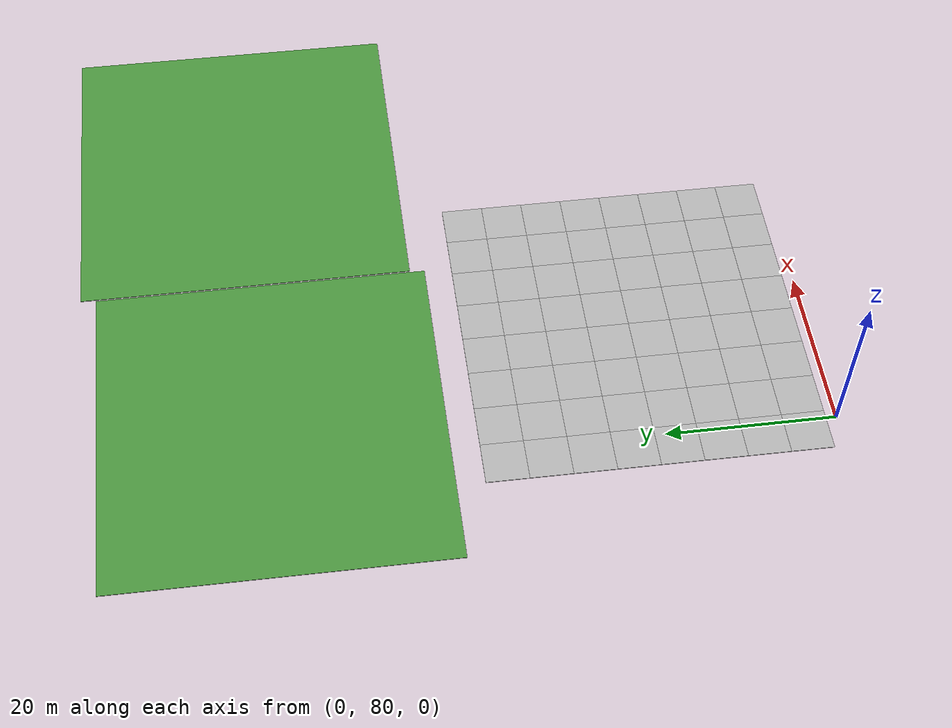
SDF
<sdf version="1.7">
 <world name="default">
  <model name="mud_plane_40x40_13">
   <model name="mud_plane_20x20">
    <model name="mud_plane">
     <static>1</static>
     <link name="link">
      <collision name="collision"><geometry><box><size>10 10 0.1</size></box></geometry></collision>
      <visual name="visual_1">
       <pose>-2.5 2.5 -0.05 0 -0 0</pose>
       <cast_shadows>0</cast_shadows>
       <geometry><box><size>5 5 0.1</size></box></geometry>
       <material>
        <script>
         <uri>model://mud_plane/materials/scripts</uri>
         <uri>model://mud_plane/materials/textures</uri>
         <name>vrc/mud</name>
        </script>
       </material>
      </visual>
      <visual name="visual_2">
       <pose>2.5 2.5 -0.05 0 -0 0</pose>
       <cast_shadows>0</cast_shadows>
       <geometry><box><size>5 5 0.1</size></box></geometry>
       <material>
        <script>
         <uri>model://mud_plane/materials/scripts</uri>
         <uri>model://mud_plane/materials/textures</uri>
         <name>vrc/mud</name>
        </script>
       </material>
      </visual>
      <visual name="visual_3">
       <pose>2.5 -2.5 -0.05 0 -0 0</pose>
       <cast_shadows>0</cast_shadows>
       <geometry><box><size>5 5 0.1</size></box></geometry>
       <material>
        <script>
         <uri>model://mud_plane/materials/scripts</uri>
         <uri>model://mud_plane/materials/textures</uri>
         <name>vrc/mud</name>
        </script>
       </material>
      </visual>
      <visual name="visual_4">
       <pose>-2.5 -2.5 -0.05 0 -0 0</pose>
       <cast_shadows>0</cast_shadows>
       <geometry><box><size>5 5 0.1</size></box></geometry>
       <material>
        <script>
         <uri>model://mud_plane/materials/scripts</uri>
         <uri>model://mud_plane/materials/textures</uri>
         <name>vrc/mud</name>
        </script>
       </material>
      </visual>
     </link>
     <pose>-4.99986 -4.99991 0 0 -0 0</pose>
    </model>
    <model name="mud_plane_0">
     <static>1</static>
     <link name="link">
      <collision name="collision"><geometry><box><size>10 10 0.1</size></box></geometry></collision>
      <visual name="visual_1">
       <pose>-2.5 2.5 -0.05 0 -0 0</pose>
       <cast_shadows>0</cast_shadows>
       <geometry><box><size>5 5 0.1</size></box></geometry>
       <material>
        <script>
         <uri>model://mud_plane/materials/scripts</uri>
         <uri>model://mud_plane/materials/textures</uri>
         <name>vrc/mud</name>
        </script>
       </material>
      </visual>
      <visual name="visual_2">
       <pose>2.5 2.5 -0.05 0 -0 0</pose>
       <cast_shadows>0</cast_shadows>
       <geometry><box><size>5 5 0.1</size></box></geometry>
       <material>
        <script>
         <uri>model://mud_plane/materials/scripts</uri>
         <uri>model://mud_plane/materials/textures</uri>
         <name>vrc/mud</name>
        </script>
       </material>
      </visual>
      <visual name="visual_3">
       <pose>2.5 -2.5 -0.05 0 -0 0</pose>
       <cast_shadows>0</cast_shadows>
       <geometry><box><size>5 5 0.1</size></box></geometry>
       <material>
        <script>
         <uri>model://mud_plane/materials/scripts</uri>
         <uri>model://mud_plane/materials/textures</uri>
         <name>vrc/mud</name>
        </script>
       </material>
      </visual>
      <visual name="visual_4">
       <pose>-2.5 -2.5 -0.05 0 -0 0</pose>
       <cast_shadows>0</cast_shadows>
       <geometry><box><size>5 5 0.1</size></box></geometry>
       <material>
        <script>
         <uri>model://mud_plane/materials/scripts</uri>
         <uri>model://mud_plane/materials/textures</uri>
         <name>vrc/mud</name>
        </script>
       </material>
      </visual>
     </link>
     <pose>-4.99946 4.99954 0 0 -0 0</pose>
    </model>
    <model name="mud_plane_1">
     <static>1</static>
     <link name="link">
      <collision name="collision"><geometry><box><size>10 10 0.1</size></box></geometry></collision>
      <visual name="visual_1">
       <pose>-2.5 2.5 -0.05 0 -0 0</pose>
       <cast_shadows>0</cast_shadows>
       <geometry><box><size>5 5 0.1</size></box></geometry>
       <material>
        <script>
         <uri>model://mud_plane/materials/scripts</uri>
         <uri>model://mud_plane/materials/textures</uri>
         <name>vrc/mud</name>
        </script>
       </material>
      </visual>
      <visual name="visual_2">
       <pose>2.5 2.5 -0.05 0 -0 0</pose>
       <cast_shadows>0</cast_shadows>
       <geometry><box><size>5 5 0.1</size></box></geometry>
       <material>
        <script>
         <uri>model://mud_plane/materials/scripts</uri>
         <uri>model://mud_plane/materials/textures</uri>
         <name>vrc/mud</name>
        </script>
       </material>
      </visual>
      <visual name="visual_3">
       <pose>2.5 -2.5 -0.05 0 -0 0</pose>
       <cast_shadows>0</cast_shadows>
       <geometry><box><size>5 5 0.1</size></box></geometry>
       <material>
        <script>
         <uri>model://mud_plane/materials/scripts</uri>
         <uri>model://mud_plane/materials/textures</uri>
         <name>vrc/mud</name>
        </script>
       </material>
      </visual>
      <visual name="visual_4">
       <pose>-2.5 -2.5 -0.05 0 -0 0</pose>
       <cast_shadows>0</cast_shadows>
       <geometry><box><size>5 5 0.1</size></box></geometry>
       <material>
        <script>
         <uri>model://mud_plane/materials/scripts</uri>
         <uri>model://mud_plane/materials/textures</uri>
         <name>vrc/mud</name>
        </script>
       </material>
      </visual>
     </link>
     <pose>4.99964 -4.99949 0 0 -0 0</pose>
    </model>
    <model name="mud_plane_2">
     <static>1</static>
     <link name="link">
      <collision name="collision"><geometry><box><size>10 10 0.1</size></box></geometry></collision>
      <visual name="visual_1">
       <pose>-2.5 2.5 -0.05 0 -0 0</pose>
       <cast_shadows>0</cast_shadows>
       <geometry><box><size>5 5 0.1</size></box></geometry>
       <material>
        <script>
         <uri>model://mud_plane/materials/scripts</uri>
         <uri>model://mud_plane/materials/textures</uri>
         <name>vrc/mud</name>
        </script>
       </material>
      </visual>
      <visual name="visual_2">
       <pose>2.5 2.5 -0.05 0 -0 0</pose>
       <cast_shadows>0</cast_shadows>
       <geometry><box><size>5 5 0.1</size></box></geometry>
       <material>
        <script>
         <uri>model://mud_plane/materials/scripts</uri>
         <uri>model://mud_plane/materials/textures</uri>
         <name>vrc/mud</name>
        </script>
       </material>
      </visual>
      <visual name="visual_3">
       <pose>2.5 -2.5 -0.05 0 -0 0</pose>
       <cast_shadows>0</cast_shadows>
       <geometry><box><size>5 5 0.1</size></box></geometry>
       <material>
        <script>
         <uri>model://mud_plane/materials/scripts</uri>
         <uri>model://mud_plane/materials/textures</uri>
         <name>vrc/mud</name>
        </script>
       </material>
      </visual>
      <visual name="visual_4">
       <pose>-2.5 -2.5 -0.05 0 -0 0</pose>
       <cast_shadows>0</cast_shadows>
       <geometry><box><size>5 5 0.1</size></box></geometry>
       <material>
        <script>
         <uri>model://mud_plane/materials/scripts</uri>
         <uri>model://mud_plane/materials/textures</uri>
         <name>vrc/mud</name>
        </script>
       </material>
      </visual>
     </link>
     <pose>4.99967 4.99986 0 0 -0 0</pose>
    </model>
    <static>0</static>
    <pose>-9.99895 9.99843 0 0 -0 0</pose>
   </model>
   <model name="mud_plane_20x20_0">
    <model name="mud_plane">
     <static>1</static>
     <link name="link">
      <collision name="collision"><geometry><box><size>10 10 0.1</size></box></geometry></collision>
      <visual name="visual_1">
       <pose>-2.5 2.5 -0.05 0 -0 0</pose>
       <cast_shadows>0</cast_shadows>
       <geometry><box><size>5 5 0.1</size></box></geometry>
       <material>
        <script>
         <uri>model://mud_plane/materials/scripts</uri>
         <uri>model://mud_plane/materials/textures</uri>
         <name>vrc/mud</name>
        </script>
       </material>
      </visual>
      <visual name="visual_2">
       <pose>2.5 2.5 -0.05 0 -0 0</pose>
       <cast_shadows>0</cast_shadows>
       <geometry><box><size>5 5 0.1</size></box></geometry>
       <material>
        <script>
         <uri>model://mud_plane/materials/scripts</uri>
         <uri>model://mud_plane/materials/textures</uri>
         <name>vrc/mud</name>
        </script>
       </material>
      </visual>
      <visual name="visual_3">
       <pose>2.5 -2.5 -0.05 0 -0 0</pose>
       <cast_shadows>0</cast_shadows>
       <geometry><box><size>5 5 0.1</size></box></geometry>
       <material>
        <script>
         <uri>model://mud_plane/materials/scripts</uri>
         <uri>model://mud_plane/materials/textures</uri>
         <name>vrc/mud</name>
        </script>
       </material>
      </visual>
      <visual name="visual_4">
       <pose>-2.5 -2.5 -0.05 0 -0 0</pose>
       <cast_shadows>0</cast_shadows>
       <geometry><box><size>5 5 0.1</size></box></geometry>
       <material>
        <script>
         <uri>model://mud_plane/materials/scripts</uri>
         <uri>model://mud_plane/materials/textures</uri>
         <name>vrc/mud</name>
        </script>
       </material>
      </visual>
     </link>
     <pose>-4.99986 -4.99991 0 0 -0 0</pose>
    </model>
    <model name="mud_plane_0">
     <static>1</static>
     <link name="link">
      <collision name="collision"><geometry><box><size>10 10 0.1</size></box></geometry></collision>
      <visual name="visual_1">
       <pose>-2.5 2.5 -0.05 0 -0 0</pose>
       <cast_shadows>0</cast_shadows>
       <geometry><box><size>5 5 0.1</size></box></geometry>
       <material>
        <script>
         <uri>model://mud_plane/materials/scripts</uri>
         <uri>model://mud_plane/materials/textures</uri>
         <name>vrc/mud</name>
        </script>
       </material>
      </visual>
      <visual name="visual_2">
       <pose>2.5 2.5 -0.05 0 -0 0</pose>
       <cast_shadows>0</cast_shadows>
       <geometry><box><size>5 5 0.1</size></box></geometry>
       <material>
        <script>
         <uri>model://mud_plane/materials/scripts</uri>
         <uri>model://mud_plane/materials/textures</uri>
         <name>vrc/mud</name>
        </script>
       </material>
      </visual>
      <visual name="visual_3">
       <pose>2.5 -2.5 -0.05 0 -0 0</pose>
       <cast_shadows>0</cast_shadows>
       <geometry><box><size>5 5 0.1</size></box></geometry>
       <material>
        <script>
         <uri>model://mud_plane/materials/scripts</uri>
         <uri>model://mud_plane/materials/textures</uri>
         <name>vrc/mud</name>
        </script>
       </material>
      </visual>
      <visual name="visual_4">
       <pose>-2.5 -2.5 -0.05 0 -0 0</pose>
       <cast_shadows>0</cast_shadows>
       <geometry><box><size>5 5 0.1</size></box></geometry>
       <material>
        <script>
         <uri>model://mud_plane/materials/scripts</uri>
         <uri>model://mud_plane/materials/textures</uri>
         <name>vrc/mud</name>
        </script>
       </material>
      </visual>
     </link>
     <pose>-4.99946 4.99954 0 0 -0 0</pose>
    </model>
    <model name="mud_plane_1">
     <static>1</static>
     <link name="link">
      <collision name="collision"><geometry><box><size>10 10 0.1</size></box></geometry></collision>
      <visual name="visual_1">
       <pose>-2.5 2.5 -0.05 0 -0 0</pose>
       <cast_shadows>0</cast_shadows>
       <geometry><box><size>5 5 0.1</size></box></geometry>
       <material>
        <script>
         <uri>model://mud_plane/materials/scripts</uri>
         <uri>model://mud_plane/materials/textures</uri>
         <name>vrc/mud</name>
        </script>
       </material>
      </visual>
      <visual name="visual_2">
       <pose>2.5 2.5 -0.05 0 -0 0</pose>
       <cast_shadows>0</cast_shadows>
       <geometry><box><size>5 5 0.1</size></box></geometry>
       <material>
        <script>
         <uri>model://mud_plane/materials/scripts</uri>
         <uri>model://mud_plane/materials/textures</uri>
         <name>vrc/mud</name>
        </script>
       </material>
      </visual>
      <visual name="visual_3">
       <pose>2.5 -2.5 -0.05 0 -0 0</pose>
       <cast_shadows>0</cast_shadows>
       <geometry><box><size>5 5 0.1</size></box></geometry>
       <material>
        <script>
         <uri>model://mud_plane/materials/scripts</uri>
         <uri>model://mud_plane/materials/textures</uri>
         <name>vrc/mud</name>
        </script>
       </material>
      </visual>
      <visual name="visual_4">
       <pose>-2.5 -2.5 -0.05 0 -0 0</pose>
       <cast_shadows>0</cast_shadows>
       <geometry><box><size>5 5 0.1</size></box></geometry>
       <material>
        <script>
         <uri>model://mud_plane/materials/scripts</uri>
         <uri>model://mud_plane/materials/textures</uri>
         <name>vrc/mud</name>
        </script>
       </material>
      </visual>
     </link>
     <pose>4.99964 -4.99949 0 0 -0 0</pose>
    </model>
    <model name="mud_plane_2">
     <static>1</static>
     <link name="link">
      <collision name="collision"><geometry><box><size>10 10 0.1</size></box></geometry></collision>
      <visual name="visual_1">
       <pose>-2.5 2.5 -0.05 0 -0 0</pose>
       <cast_shadows>0</cast_shadows>
       <geometry><box><size>5 5 0.1</size></box></geometry>
       <material>
        <script>
         <uri>model://mud_plane/materials/scripts</uri>
         <uri>model://mud_plane/materials/textures</uri>
         <name>vrc/mud</name>
        </script>
       </material>
      </visual>
      <visual name="visual_2">
       <pose>2.5 2.5 -0.05 0 -0 0</pose>
       <cast_shadows>0</cast_shadows>
       <geometry><box><size>5 5 0.1</size></box></geometry>
       <material>
        <script>
         <uri>model://mud_plane/materials/scripts</uri>
         <uri>model://mud_plane/materials/textures</uri>
         <name>vrc/mud</name>
        </script>
       </material>
      </visual>
      <visual name="visual_3">
       <pose>2.5 -2.5 -0.05 0 -0 0</pose>
       <cast_shadows>0</cast_shadows>
       <geometry><box><size>5 5 0.1</size></box></geometry>
       <material>
        <script>
         <uri>model://mud_plane/materials/scripts</uri>
         <uri>model://mud_plane/materials/textures</uri>
         <name>vrc/mud</name>
        </script>
       </material>
      </visual>
      <visual name="visual_4">
       <pose>-2.5 -2.5 -0.05 0 -0 0</pose>
       <cast_shadows>0</cast_shadows>
       <geometry><box><size>5 5 0.1</size></box></geometry>
       <material>
        <script>
         <uri>model://mud_plane/materials/scripts</uri>
         <uri>model://mud_plane/materials/textures</uri>
         <name>vrc/mud</name>
        </script>
       </material>
      </visual>
     </link>
     <pose>4.99967 4.99986 0 0 -0 0</pose>
    </model>
    <static>0</static>
    <pose>9.99933 9.9997 0 0 -0 0</pose>
   </model>
   <model name="mud_plane_20x20_1">
    <model name="mud_plane">
     <static>1</static>
     <link name="link">
      <collision name="collision"><geometry><box><size>10 10 0.1</size></box></geometry></collision>
      <visual name="visual_1">
       <pose>-2.5 2.5 -0.05 0 -0 0</pose>
       <cast_shadows>0</cast_shadows>
       <geometry><box><size>5 5 0.1</size></box></geometry>
       <material>
        <script>
         <uri>model://mud_plane/materials/scripts</uri>
         <uri>model://mud_plane/materials/textures</uri>
         <name>vrc/mud</name>
        </script>
       </material>
      </visual>
      <visual name="visual_2">
       <pose>2.5 2.5 -0.05 0 -0 0</pose>
       <cast_shadows>0</cast_shadows>
       <geometry><box><size>5 5 0.1</size></box></geometry>
       <material>
        <script>
         <uri>model://mud_plane/materials/scripts</uri>
         <uri>model://mud_plane/materials/textures</uri>
         <name>vrc/mud</name>
        </script>
       </material>
      </visual>
      <visual name="visual_3">
       <pose>2.5 -2.5 -0.05 0 -0 0</pose>
       <cast_shadows>0</cast_shadows>
       <geometry><box><size>5 5 0.1</size></box></geometry>
       <material>
        <script>
         <uri>model://mud_plane/materials/scripts</uri>
         <uri>model://mud_plane/materials/textures</uri>
         <name>vrc/mud</name>
        </script>
       </material>
      </visual>
      <visual name="visual_4">
       <pose>-2.5 -2.5 -0.05 0 -0 0</pose>
       <cast_shadows>0</cast_shadows>
       <geometry><box><size>5 5 0.1</size></box></geometry>
       <material>
        <script>
         <uri>model://mud_plane/materials/scripts</uri>
         <uri>model://mud_plane/materials/textures</uri>
         <name>vrc/mud</name>
        </script>
       </material>
      </visual>
     </link>
     <pose>-4.99986 -4.99991 0 0 -0 0</pose>
    </model>
    <model name="mud_plane_0">
     <static>1</static>
     <link name="link">
      <collision name="collision"><geometry><box><size>10 10 0.1</size></box></geometry></collision>
      <visual name="visual_1">
       <pose>-2.5 2.5 -0.05 0 -0 0</pose>
       <cast_shadows>0</cast_shadows>
       <geometry><box><size>5 5 0.1</size></box></geometry>
       <material>
        <script>
         <uri>model://mud_plane/materials/scripts</uri>
         <uri>model://mud_plane/materials/textures</uri>
         <name>vrc/mud</name>
        </script>
       </material>
      </visual>
      <visual name="visual_2">
       <pose>2.5 2.5 -0.05 0 -0 0</pose>
       <cast_shadows>0</cast_shadows>
       <geometry><box><size>5 5 0.1</size></box></geometry>
       <material>
        <script>
         <uri>model://mud_plane/materials/scripts</uri>
         <uri>model://mud_plane/materials/textures</uri>
         <name>vrc/mud</name>
        </script>
       </material>
      </visual>
      <visual name="visual_3">
       <pose>2.5 -2.5 -0.05 0 -0 0</pose>
       <cast_shadows>0</cast_shadows>
       <geometry><box><size>5 5 0.1</size></box></geometry>
       <material>
        <script>
         <uri>model://mud_plane/materials/scripts</uri>
         <uri>model://mud_plane/materials/textures</uri>
         <name>vrc/mud</name>
        </script>
       </material>
      </visual>
      <visual name="visual_4">
       <pose>-2.5 -2.5 -0.05 0 -0 0</pose>
       <cast_shadows>0</cast_shadows>
       <geometry><box><size>5 5 0.1</size></box></geometry>
       <material>
        <script>
         <uri>model://mud_plane/materials/scripts</uri>
         <uri>model://mud_plane/materials/textures</uri>
         <name>vrc/mud</name>
        </script>
       </material>
      </visual>
     </link>
     <pose>-4.99946 4.99954 0 0 -0 0</pose>
    </model>
    <model name="mud_plane_1">
     <static>1</static>
     <link name="link">
      <collision name="collision"><geometry><box><size>10 10 0.1</size></box></geometry></collision>
      <visual name="visual_1">
       <pose>-2.5 2.5 -0.05 0 -0 0</pose>
       <cast_shadows>0</cast_shadows>
       <geometry><box><size>5 5 0.1</size></box></geometry>
       <material>
        <script>
         <uri>model://mud_plane/materials/scripts</uri>
         <uri>model://mud_plane/materials/textures</uri>
         <name>vrc/mud</name>
        </script>
       </material>
      </visual>
      <visual name="visual_2">
       <pose>2.5 2.5 -0.05 0 -0 0</pose>
       <cast_shadows>0</cast_shadows>
       <geometry><box><size>5 5 0.1</size></box></geometry>
       <material>
        <script>
         <uri>model://mud_plane/materials/scripts</uri>
         <uri>model://mud_plane/materials/textures</uri>
         <name>vrc/mud</name>
        </script>
       </material>
      </visual>
      <visual name="visual_3">
       <pose>2.5 -2.5 -0.05 0 -0 0</pose>
       <cast_shadows>0</cast_shadows>
       <geometry><box><size>5 5 0.1</size></box></geometry>
       <material>
        <script>
         <uri>model://mud_plane/materials/scripts</uri>
         <uri>model://mud_plane/materials/textures</uri>
         <name>vrc/mud</name>
        </script>
       </material>
      </visual>
      <visual name="visual_4">
       <pose>-2.5 -2.5 -0.05 0 -0 0</pose>
       <cast_shadows>0</cast_shadows>
       <geometry><box><size>5 5 0.1</size></box></geometry>
       <material>
        <script>
         <uri>model://mud_plane/materials/scripts</uri>
         <uri>model://mud_plane/materials/textures</uri>
         <name>vrc/mud</name>
        </script>
       </material>
      </visual>
     </link>
     <pose>4.99964 -4.99949 0 0 -0 0</pose>
    </model>
    <model name="mud_plane_2">
     <static>1</static>
     <link name="link">
      <collision name="collision"><geometry><box><size>10 10 0.1</size></box></geometry></collision>
      <visual name="visual_1">
       <pose>-2.5 2.5 -0.05 0 -0 0</pose>
       <cast_shadows>0</cast_shadows>
       <geometry><box><size>5 5 0.1</size></box></geometry>
       <material>
        <script>
         <uri>model://mud_plane/materials/scripts</uri>
         <uri>model://mud_plane/materials/textures</uri>
         <name>vrc/mud</name>
        </script>
       </material>
      </visual>
      <visual name="visual_2">
       <pose>2.5 2.5 -0.05 0 -0 0</pose>
       <cast_shadows>0</cast_shadows>
       <geometry><box><size>5 5 0.1</size></box></geometry>
       <material>
        <script>
         <uri>model://mud_plane/materials/scripts</uri>
         <uri>model://mud_plane/materials/textures</uri>
         <name>vrc/mud</name>
        </script>
       </material>
      </visual>
      <visual name="visual_3">
       <pose>2.5 -2.5 -0.05 0 -0 0</pose>
       <cast_shadows>0</cast_shadows>
       <geometry><box><size>5 5 0.1</size></box></geometry>
       <material>
        <script>
         <uri>model://mud_plane/materials/scripts</uri>
         <uri>model://mud_plane/materials/textures</uri>
         <name>vrc/mud</name>
        </script>
       </material>
      </visual>
      <visual name="visual_4">
       <pose>-2.5 -2.5 -0.05 0 -0 0</pose>
       <cast_shadows>0</cast_shadows>
       <geometry><box><size>5 5 0.1</size></box></geometry>
       <material>
        <script>
         <uri>model://mud_plane/materials/scripts</uri>
         <uri>model://mud_plane/materials/textures</uri>
         <name>vrc/mud</name>
        </script>
       </material>
      </visual>
     </link>
     <pose>4.99967 4.99986 0 0 -0 0</pose>
    </model>
    <static>0</static>
    <pose>9.9993 -9.99877 0 0 -0 0</pose>
   </model>
   <model name="mud_plane_20x20_2">
    <model name="mud_plane">
     <static>1</static>
     <link name="link">
      <collision name="collision"><geometry><box><size>10 10 0.1</size></box></geometry></collision>
      <visual name="visual_1">
       <pose>-2.5 2.5 -0.05 0 -0 0</pose>
       <cast_shadows>0</cast_shadows>
       <geometry><box><size>5 5 0.1</size></box></geometry>
       <material>
        <script>
         <uri>model://mud_plane/materials/scripts</uri>
         <uri>model://mud_plane/materials/textures</uri>
         <name>vrc/mud</name>
        </script>
       </material>
      </visual>
      <visual name="visual_2">
       <pose>2.5 2.5 -0.05 0 -0 0</pose>
       <cast_shadows>0</cast_shadows>
       <geometry><box><size>5 5 0.1</size></box></geometry>
       <material>
        <script>
         <uri>model://mud_plane/materials/scripts</uri>
         <uri>model://mud_plane/materials/textures</uri>
         <name>vrc/mud</name>
        </script>
       </material>
      </visual>
      <visual name="visual_3">
       <pose>2.5 -2.5 -0.05 0 -0 0</pose>
       <cast_shadows>0</cast_shadows>
       <geometry><box><size>5 5 0.1</size></box></geometry>
       <material>
        <script>
         <uri>model://mud_plane/materials/scripts</uri>
         <uri>model://mud_plane/materials/textures</uri>
         <name>vrc/mud</name>
        </script>
       </material>
      </visual>
      <visual name="visual_4">
       <pose>-2.5 -2.5 -0.05 0 -0 0</pose>
       <cast_shadows>0</cast_shadows>
       <geometry><box><size>5 5 0.1</size></box></geometry>
       <material>
        <script>
         <uri>model://mud_plane/materials/scripts</uri>
         <uri>model://mud_plane/materials/textures</uri>
         <name>vrc/mud</name>
        </script>
       </material>
      </visual>
     </link>
     <pose>-4.99986 -4.99991 0 0 -0 0</pose>
    </model>
    <model name="mud_plane_0">
     <static>1</static>
     <link name="link">
      <collision name="collision"><geometry><box><size>10 10 0.1</size></box></geometry></collision>
      <visual name="visual_1">
       <pose>-2.5 2.5 -0.05 0 -0 0</pose>
       <cast_shadows>0</cast_shadows>
       <geometry><box><size>5 5 0.1</size></box></geometry>
       <material>
        <script>
         <uri>model://mud_plane/materials/scripts</uri>
         <uri>model://mud_plane/materials/textures</uri>
         <name>vrc/mud</name>
        </script>
       </material>
      </visual>
      <visual name="visual_2">
       <pose>2.5 2.5 -0.05 0 -0 0</pose>
       <cast_shadows>0</cast_shadows>
       <geometry><box><size>5 5 0.1</size></box></geometry>
       <material>
        <script>
         <uri>model://mud_plane/materials/scripts</uri>
         <uri>model://mud_plane/materials/textures</uri>
         <name>vrc/mud</name>
        </script>
       </material>
      </visual>
      <visual name="visual_3">
       <pose>2.5 -2.5 -0.05 0 -0 0</pose>
       <cast_shadows>0</cast_shadows>
       <geometry><box><size>5 5 0.1</size></box></geometry>
       <material>
        <script>
         <uri>model://mud_plane/materials/scripts</uri>
         <uri>model://mud_plane/materials/textures</uri>
         <name>vrc/mud</name>
        </script>
       </material>
      </visual>
      <visual name="visual_4">
       <pose>-2.5 -2.5 -0.05 0 -0 0</pose>
       <cast_shadows>0</cast_shadows>
       <geometry><box><size>5 5 0.1</size></box></geometry>
       <material>
        <script>
         <uri>model://mud_plane/materials/scripts</uri>
         <uri>model://mud_plane/materials/textures</uri>
         <name>vrc/mud</name>
        </script>
       </material>
      </visual>
     </link>
     <pose>-4.99946 4.99954 0 0 -0 0</pose>
    </model>
    <model name="mud_plane_1">
     <static>1</static>
     <link name="link">
      <collision name="collision"><geometry><box><size>10 10 0.1</size></box></geometry></collision>
      <visual name="visual_1">
       <pose>-2.5 2.5 -0.05 0 -0 0</pose>
       <cast_shadows>0</cast_shadows>
       <geometry><box><size>5 5 0.1</size></box></geometry>
       <material>
        <script>
         <uri>model://mud_plane/materials/scripts</uri>
         <uri>model://mud_plane/materials/textures</uri>
         <name>vrc/mud</name>
        </script>
       </material>
      </visual>
      <visual name="visual_2">
       <pose>2.5 2.5 -0.05 0 -0 0</pose>
       <cast_shadows>0</cast_shadows>
       <geometry><box><size>5 5 0.1</size></box></geometry>
       <material>
        <script>
         <uri>model://mud_plane/materials/scripts</uri>
         <uri>model://mud_plane/materials/textures</uri>
         <name>vrc/mud</name>
        </script>
       </material>
      </visual>
      <visual name="visual_3">
       <pose>2.5 -2.5 -0.05 0 -0 0</pose>
       <cast_shadows>0</cast_shadows>
       <geometry><box><size>5 5 0.1</size></box></geometry>
       <material>
        <script>
         <uri>model://mud_plane/materials/scripts</uri>
         <uri>model://mud_plane/materials/textures</uri>
         <name>vrc/mud</name>
        </script>
       </material>
      </visual>
      <visual name="visual_4">
       <pose>-2.5 -2.5 -0.05 0 -0 0</pose>
       <cast_shadows>0</cast_shadows>
       <geometry><box><size>5 5 0.1</size></box></geometry>
       <material>
        <script>
         <uri>model://mud_plane/materials/scripts</uri>
         <uri>model://mud_plane/materials/textures</uri>
         <name>vrc/mud</name>
        </script>
       </material>
      </visual>
     </link>
     <pose>4.99964 -4.99949 0 0 -0 0</pose>
    </model>
    <model name="mud_plane_2">
     <static>1</static>
     <link name="link">
      <collision name="collision"><geometry><box><size>10 10 0.1</size></box></geometry></collision>
      <visual name="visual_1">
       <pose>-2.5 2.5 -0.05 0 -0 0</pose>
       <cast_shadows>0</cast_shadows>
       <geometry><box><size>5 5 0.1</size></box></geometry>
       <material>
        <script>
         <uri>model://mud_plane/materials/scripts</uri>
         <uri>model://mud_plane/materials/textures</uri>
         <name>vrc/mud</name>
        </script>
       </material>
      </visual>
      <visual name="visual_2">
       <pose>2.5 2.5 -0.05 0 -0 0</pose>
       <cast_shadows>0</cast_shadows>
       <geometry><box><size>5 5 0.1</size></box></geometry>
       <material>
        <script>
         <uri>model://mud_plane/materials/scripts</uri>
         <uri>model://mud_plane/materials/textures</uri>
         <name>vrc/mud</name>
        </script>
       </material>
      </visual>
      <visual name="visual_3">
       <pose>2.5 -2.5 -0.05 0 -0 0</pose>
       <cast_shadows>0</cast_shadows>
       <geometry><box><size>5 5 0.1</size></box></geometry>
       <material>
        <script>
         <uri>model://mud_plane/materials/scripts</uri>
         <uri>model://mud_plane/materials/textures</uri>
         <name>vrc/mud</name>
        </script>
       </material>
      </visual>
      <visual name="visual_4">
       <pose>-2.5 -2.5 -0.05 0 -0 0</pose>
       <cast_shadows>0</cast_shadows>
       <geometry><box><size>5 5 0.1</size></box></geometry>
       <material>
        <script>
         <uri>model://mud_plane/materials/scripts</uri>
         <uri>model://mud_plane/materials/textures</uri>
         <name>vrc/mud</name>
        </script>
       </material>
      </visual>
     </link>
     <pose>4.99967 4.99986 0 0 -0 0</pose>
    </model>
    <static>0</static>
    <pose>-9.99969 -9.99935 0 0 -0 0</pose>
   </model>
   <static>0</static>
   <pose>16.0566 101.188 0 0 -0 0</pose>
  </model>
  <model name="grass_plane_40x40_3">
   <pose>47.1097 146.273 -0.05 0 -0 0</pose>
   <static>1</static>
   <link name="link">
    <collision name="collision"><geometry><box><size>40 40 0.1</size></box></geometry></collision>
    <visual name="grass">
     <cast_shadows>0</cast_shadows>
     <geometry><box><size>40 40 0.1</size></box></geometry>
     <material>
      <script><uri>file://media/materials/scripts/gazebo.material</uri><name>Gazebo/Grass</name></script>
     </material>
    </visual>
   </link>
  </model>
  <model name="grass_plane_40x40_8">
   <pose>6.90946 144.484 -0.05 0 -0 0</pose>
   <static>1</static>
   <link name="link">
    <collision name="collision"><geometry><box><size>40 40 0.1</size></box></geometry></collision>
    <visual name="grass">
     <cast_shadows>0</cast_shadows>
     <geometry><box><size>40 40 0.1</size></box></geometry>
     <material>
      <script><uri>file://media/materials/scripts/gazebo.material</uri><name>Gazebo/Grass</name></script>
     </material>
    </visual>
   </link>
  </model>
 </world>
</sdf>
